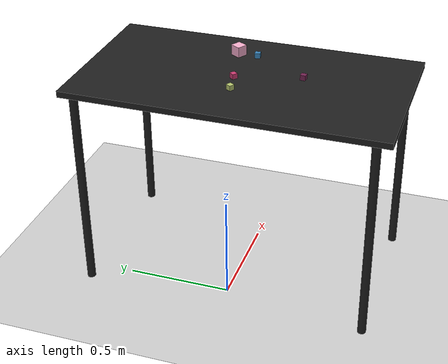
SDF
<?xml version="1.0" ?>
<sdf version="1.6">
  <world name="arm_world">
    <plugin filename="gz-sim-physics-system" name="gz::sim::systems::Physics">
      <engine>
        <filename>libgz-physics-bullet-featherstone-plugin.so</filename>
      </engine>
    </plugin>
    <plugin filename="gz-sim-user-commands-system" name="gz::sim::systems::UserCommands"/>
    <plugin filename="gz-sim-scene-broadcaster-system" name="gz::sim::systems::SceneBroadcaster"/>
    <plugin filename="gz-sim-sensors-system" name="gz::sim::systems::Sensors">
      <render_engine>ogre2</render_engine>
    </plugin>
    <gravity>0.0 0.0 -9.8</gravity>
    <scene>
      <shadows>false</shadows>
    </scene>
    <gui>
      <camera name="user_camera">
        <pose>0.75 -0.75 1.4 0 0.29 2.21</pose>
      </camera>
    </gui>
    <include>
      <uri>https://fuel.gazebosim.org/1.0/OpenRobotics/models/Sun</uri>
    </include>
    <model name="table">
      <static>true</static>
      <include>
        <uri>model://table</uri>
      </include>
      <pose>0.29 0 0 0 0 1.5708</pose>
    </model>
    <model name="ground_plane">
      <static>true</static>
      <link name="link">
        <collision name="collision">
          <geometry>
            <plane>
              <normal>0 0 1</normal>
            </plane>
          </geometry>
          <surface>
            <friction>
              <ode>
                <mu>1.0</mu>
                <mu2>1.0</mu2>
              </ode>
            </friction>
          </surface>
        </collision>
        <visual name="visual">
          <geometry>
            <plane>
              <normal>0 0 1</normal>
              <size>100 100</size>
            </plane>
          </geometry>
          <material>
            <ambient>0.8 0.8 0.8 1</ambient>
            <diffuse>0.8 0.8 0.8 1</diffuse>
            <specular>0.8 0.8 0.8 1</specular>
          </material>
        </visual>
      </link>
    </model>
    <model name="cube_s_0">
      <pose>0.454 -0.005 1.05 0 0 3.24</pose>
      <link name="cube_s_0_link">
        <inertial>
          <mass>0.05</mass>
          <inertia>
            <ixx>2.04e-7</ixx>
            <iyy>2.04e-7</iyy>
            <izz>3.9e-8</izz>
            <ixy>0</ixy>
            <ixz>0</ixz>
            <iyz>0</iyz>
          </inertia>
        </inertial>
        <collision name="cube_s_0_collision">
          <geometry>
            <box>
              <size>0.025 0.025 0.025</size>
            </box>
          </geometry>
          <surface>
            <friction>
              <ode>
                <mu>0.8</mu>
                <mu2>0.8</mu2>
                <fdir1>0 0 1</fdir1>
                <slip1>0.001</slip1>
                <slip2>0.001</slip2>
              </ode>
              <torsional>
                <coefficient>0.1</coefficient>
                <surface_radius>0.015</surface_radius>
                <use_patch_radius>true</use_patch_radius>
              </torsional>
            </friction>
            <contact>
              <ode>
                <kp>1e5</kp>
                <kd>10</kd>
                <max_vel>0.1</max_vel>
                <min_depth>0.001</min_depth>
                <soft_cfm>0.01</soft_cfm>
                <soft_erp>0.2</soft_erp>
              </ode>
            </contact>
            <bounce>
              <restitution_coefficient>0.2</restitution_coefficient>
              <threshold>0.01</threshold>
            </bounce>
          </surface>
        </collision>
        <visual name="cube_s_0_visual">
          <geometry>
            <box>
              <size>0.025 0.025 0.025</size>
            </box>
          </geometry>
          <material>
            <ambient>0.21 0.5 0.71 1</ambient>
            <diffuse>0.21 0.5 0.71 1</diffuse>
          </material>
        </visual>
        <velocity_decay>
          <linear>1</linear>
          <angular>1</angular>
        </velocity_decay>
      </link>
    </model>
    <model name="cube_m_1">
      <pose>0.483 0.097 1.05 0 0 2.62</pose>
      <link name="cube_m_1_link">
        <inertial>
          <mass>0.05</mass>
          <inertia>
            <ixx>2.04e-7</ixx>
            <iyy>2.04e-7</iyy>
            <izz>3.9e-8</izz>
            <ixy>0</ixy>
            <ixz>0</ixz>
            <iyz>0</iyz>
          </inertia>
        </inertial>
        <collision name="cube_m_1_collision">
          <geometry>
            <box>
              <size>0.05 0.05 0.05</size>
            </box>
          </geometry>
          <surface>
            <friction>
              <ode>
                <mu>0.8</mu>
                <mu2>0.8</mu2>
                <fdir1>0 0 1</fdir1>
                <slip1>0.001</slip1>
                <slip2>0.001</slip2>
              </ode>
              <torsional>
                <coefficient>0.1</coefficient>
                <surface_radius>0.015</surface_radius>
                <use_patch_radius>true</use_patch_radius>
              </torsional>
            </friction>
            <contact>
              <ode>
                <kp>1e5</kp>
                <kd>10</kd>
                <max_vel>0.1</max_vel>
                <min_depth>0.001</min_depth>
                <soft_cfm>0.01</soft_cfm>
                <soft_erp>0.2</soft_erp>
              </ode>
            </contact>
            <bounce>
              <restitution_coefficient>0.2</restitution_coefficient>
              <threshold>0.01</threshold>
            </bounce>
          </surface>
        </collision>
        <visual name="cube_m_1_visual">
          <geometry>
            <box>
              <size>0.05 0.05 0.05</size>
            </box>
          </geometry>
          <material>
            <ambient>0.96 0.68 0.8 1</ambient>
            <diffuse>0.96 0.68 0.8 1</diffuse>
          </material>
        </visual>
        <velocity_decay>
          <linear>1</linear>
          <angular>1</angular>
        </velocity_decay>
      </link>
    </model>
    <model name="cube_s_2">
      <pose>0.101 0.011 1.05 0 0 2.61</pose>
      <link name="cube_s_2_link">
        <inertial>
          <mass>0.05</mass>
          <inertia>
            <ixx>2.04e-7</ixx>
            <iyy>2.04e-7</iyy>
            <izz>3.9e-8</izz>
            <ixy>0</ixy>
            <ixz>0</ixz>
            <iyz>0</iyz>
          </inertia>
        </inertial>
        <collision name="cube_s_2_collision">
          <geometry>
            <box>
              <size>0.025 0.025 0.025</size>
            </box>
          </geometry>
          <surface>
            <friction>
              <ode>
                <mu>0.8</mu>
                <mu2>0.8</mu2>
                <fdir1>0 0 1</fdir1>
                <slip1>0.001</slip1>
                <slip2>0.001</slip2>
              </ode>
              <torsional>
                <coefficient>0.1</coefficient>
                <surface_radius>0.015</surface_radius>
                <use_patch_radius>true</use_patch_radius>
              </torsional>
            </friction>
            <contact>
              <ode>
                <kp>1e5</kp>
                <kd>10</kd>
                <max_vel>0.1</max_vel>
                <min_depth>0.001</min_depth>
                <soft_cfm>0.01</soft_cfm>
                <soft_erp>0.2</soft_erp>
              </ode>
            </contact>
            <bounce>
              <restitution_coefficient>0.2</restitution_coefficient>
              <threshold>0.01</threshold>
            </bounce>
          </surface>
        </collision>
        <visual name="cube_s_2_visual">
          <geometry>
            <box>
              <size>0.025 0.025 0.025</size>
            </box>
          </geometry>
          <material>
            <ambient>0.71 0.77 0.43 1</ambient>
            <diffuse>0.71 0.77 0.43 1</diffuse>
          </material>
        </visual>
        <velocity_decay>
          <linear>1</linear>
          <angular>1</angular>
        </velocity_decay>
      </link>
    </model>
    <model name="cube_s_3">
      <pose>0.213 0.033 1.05 0 0 4.05</pose>
      <link name="cube_s_3_link">
        <inertial>
          <mass>0.05</mass>
          <inertia>
            <ixx>2.04e-7</ixx>
            <iyy>2.04e-7</iyy>
            <izz>3.9e-8</izz>
            <ixy>0</ixy>
            <ixz>0</ixz>
            <iyz>0</iyz>
          </inertia>
        </inertial>
        <collision name="cube_s_3_collision">
          <geometry>
            <box>
              <size>0.025 0.025 0.025</size>
            </box>
          </geometry>
          <surface>
            <friction>
              <ode>
                <mu>0.8</mu>
                <mu2>0.8</mu2>
                <fdir1>0 0 1</fdir1>
                <slip1>0.001</slip1>
                <slip2>0.001</slip2>
              </ode>
              <torsional>
                <coefficient>0.1</coefficient>
                <surface_radius>0.015</surface_radius>
                <use_patch_radius>true</use_patch_radius>
              </torsional>
            </friction>
            <contact>
              <ode>
                <kp>1e5</kp>
                <kd>10</kd>
                <max_vel>0.1</max_vel>
                <min_depth>0.001</min_depth>
                <soft_cfm>0.01</soft_cfm>
                <soft_erp>0.2</soft_erp>
              </ode>
            </contact>
            <bounce>
              <restitution_coefficient>0.2</restitution_coefficient>
              <threshold>0.01</threshold>
            </bounce>
          </surface>
        </collision>
        <visual name="cube_s_3_visual">
          <geometry>
            <box>
              <size>0.025 0.025 0.025</size>
            </box>
          </geometry>
          <material>
            <ambient>0.81 0.23 0.45 1</ambient>
            <diffuse>0.81 0.23 0.45 1</diffuse>
          </material>
        </visual>
        <velocity_decay>
          <linear>1</linear>
          <angular>1</angular>
        </velocity_decay>
      </link>
    </model>
    <model name="cube_s_4">
      <pose>0.295 -0.268 1.05 0 0 4.55</pose>
      <link name="cube_s_4_link">
        <inertial>
          <mass>0.05</mass>
          <inertia>
            <ixx>2.04e-7</ixx>
            <iyy>2.04e-7</iyy>
            <izz>3.9e-8</izz>
            <ixy>0</ixy>
            <ixz>0</ixz>
            <iyz>0</iyz>
          </inertia>
        </inertial>
        <collision name="cube_s_4_collision">
          <geometry>
            <box>
              <size>0.025 0.025 0.025</size>
            </box>
          </geometry>
          <surface>
            <friction>
              <ode>
                <mu>0.8</mu>
                <mu2>0.8</mu2>
                <fdir1>0 0 1</fdir1>
                <slip1>0.001</slip1>
                <slip2>0.001</slip2>
              </ode>
              <torsional>
                <coefficient>0.1</coefficient>
                <surface_radius>0.015</surface_radius>
                <use_patch_radius>true</use_patch_radius>
              </torsional>
            </friction>
            <contact>
              <ode>
                <kp>1e5</kp>
                <kd>10</kd>
                <max_vel>0.1</max_vel>
                <min_depth>0.001</min_depth>
                <soft_cfm>0.01</soft_cfm>
                <soft_erp>0.2</soft_erp>
              </ode>
            </contact>
            <bounce>
              <restitution_coefficient>0.2</restitution_coefficient>
              <threshold>0.01</threshold>
            </bounce>
          </surface>
        </collision>
        <visual name="cube_s_4_visual">
          <geometry>
            <box>
              <size>0.025 0.025 0.025</size>
            </box>
          </geometry>
          <material>
            <ambient>0.44 0.13 0.31 1</ambient>
            <diffuse>0.44 0.13 0.31 1</diffuse>
          </material>
        </visual>
        <velocity_decay>
          <linear>1</linear>
          <angular>1</angular>
        </velocity_decay>
      </link>
    </model>
  </world>
</sdf>

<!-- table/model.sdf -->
<sdf version="1.5">
  <model name="table">
    <static>true</static>
    <link name="link">
      <collision name="surface">
        <pose>0 0 1.0 0 0 0</pose>
        <geometry>
          <box>
            <size>1.5 0.8 0.03</size>
          </box>
        </geometry>
        <surface>
          <friction>
            <ode>
              <mu>0.6</mu>
              <mu2>0.6</mu2>
            </ode>
          </friction>
        </surface>
      </collision>
      <visual name="surface">
        <pose>0 0 1.0 0 0 0</pose>
        <geometry>
          <box>
            <size>1.5 0.8 0.03</size>
          </box>
        </geometry>
        <material>
          <script>
            <uri>file://media/materials/scripts/gazebo.material</uri>
            <name>Gazebo/Black</name>
          </script>
        </material>
      </visual>
      <collision name="front_left_leg">
        <pose>0.68 0.38 0.5 0 0 0</pose>
        <geometry>
          <cylinder>
            <radius>0.02</radius>
            <length>1.0</length>
          </cylinder>
        </geometry>
      </collision>
      <visual name="front_left_leg">
        <pose>0.68 0.38 0.5 0 0 0</pose>
        <geometry>
          <cylinder>
            <radius>0.02</radius>
            <length>1.0</length>
          </cylinder>
        </geometry>
        <material>
          <script>
            <uri>file://media/materials/scripts/gazebo.material</uri>
            <name>Gazebo/Black</name>
          </script>
        </material>
      </visual>
      <collision name="front_right_leg">
        <pose>0.68 -0.38 0.5 0 0 0</pose>
        <geometry>
          <cylinder>
            <radius>0.02</radius>
            <length>1.0</length>
          </cylinder>
        </geometry>
      </collision>
      <visual name="front_right_leg">
        <pose>0.68 -0.38 0.5 0 0 0</pose>
        <geometry>
          <cylinder>
            <radius>0.02</radius>
            <length>1.0</length>
          </cylinder>
        </geometry>
        <material>
          <script>
            <uri>file://media/materials/scripts/gazebo.material</uri>
            <name>Gazebo/Black</name>
          </script>
        </material>
      </visual>
      <collision name="back_right_leg">
        <pose>-0.68 -0.38 0.5 0 0 0</pose>
        <geometry>
          <cylinder>
            <radius>0.02</radius>
            <length>1.0</length>
          </cylinder>
        </geometry>
      </collision>
      <visual name="back_right_leg">
        <pose>-0.68 -0.38 0.5 0 0 0</pose>
        <geometry>
          <cylinder>
            <radius>0.02</radius>
            <length>1.0</length>
          </cylinder>
        </geometry>
        <material>
          <script>
            <uri>file://media/materials/scripts/gazebo.material</uri>
            <name>Gazebo/Black</name>
          </script>
        </material>
      </visual>
      <collision name="back_left_leg">
        <pose>-0.68 0.38 0.5 0 0 0</pose>
        <geometry>
          <cylinder>
            <radius>0.02</radius>
            <length>1.0</length>
          </cylinder>
        </geometry>
      </collision>
      <visual name="back_left_leg">
        <pose>-0.68 0.38 0.5 0 0 0</pose>
        <geometry>
          <cylinder>
            <radius>0.02</radius>
            <length>1.0</length>
          </cylinder>
        </geometry>
        <material>
          <script>
            <uri>file://media/materials/scripts/gazebo.material</uri>
            <name>Gazebo/Black</name>
          </script>
        </material>
      </visual>
    </link>
  </model>
</sdf>
